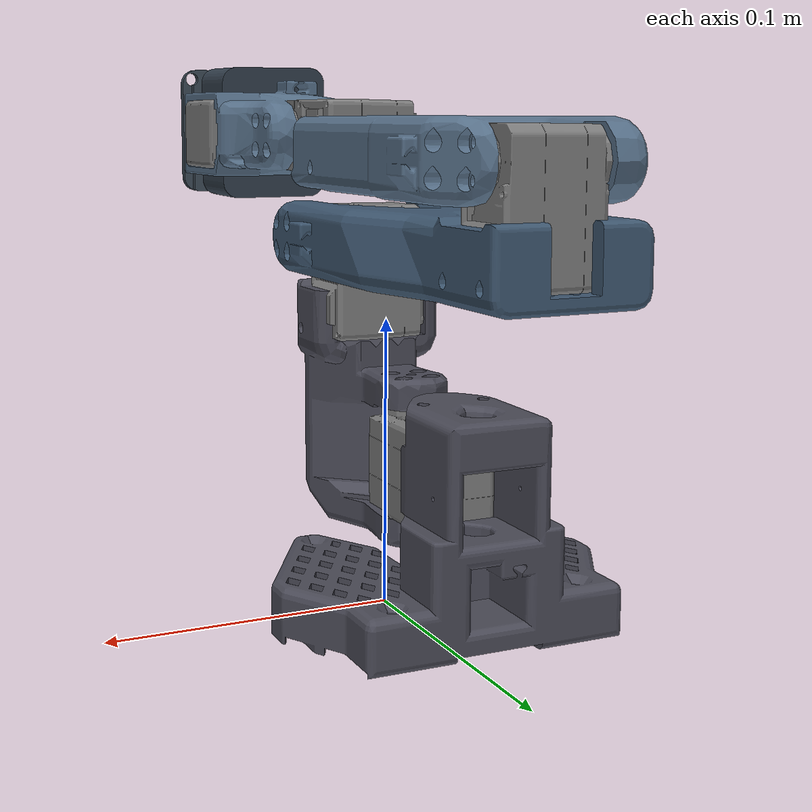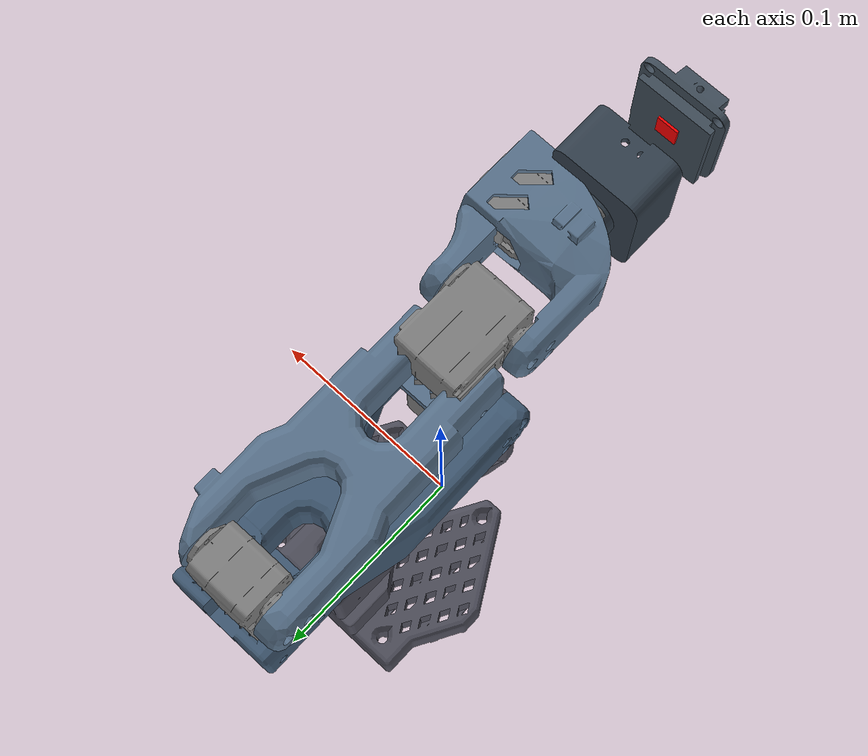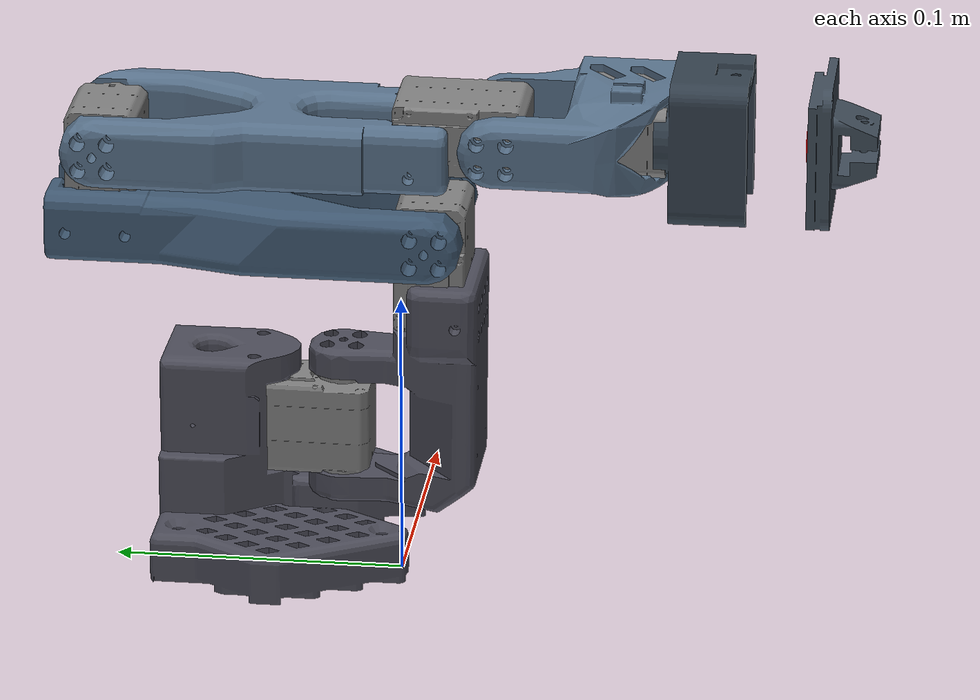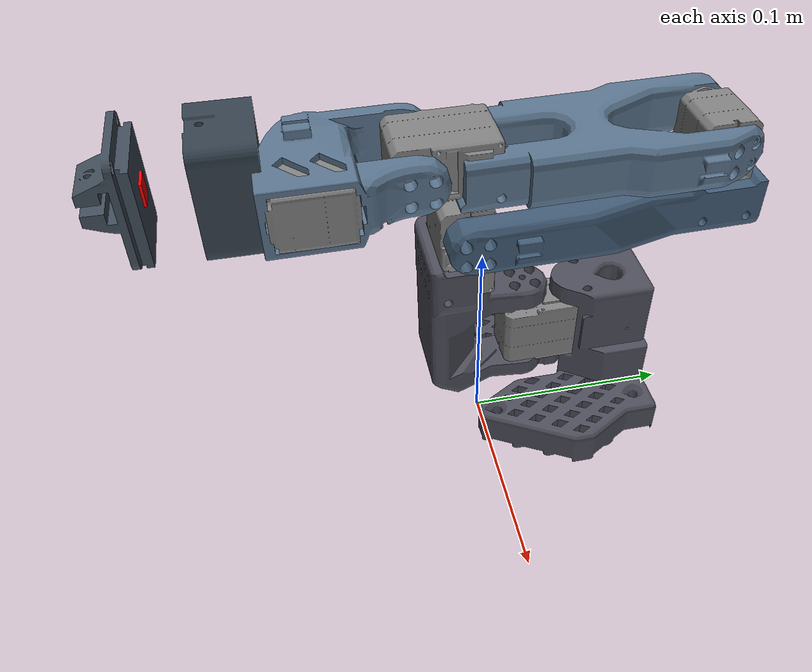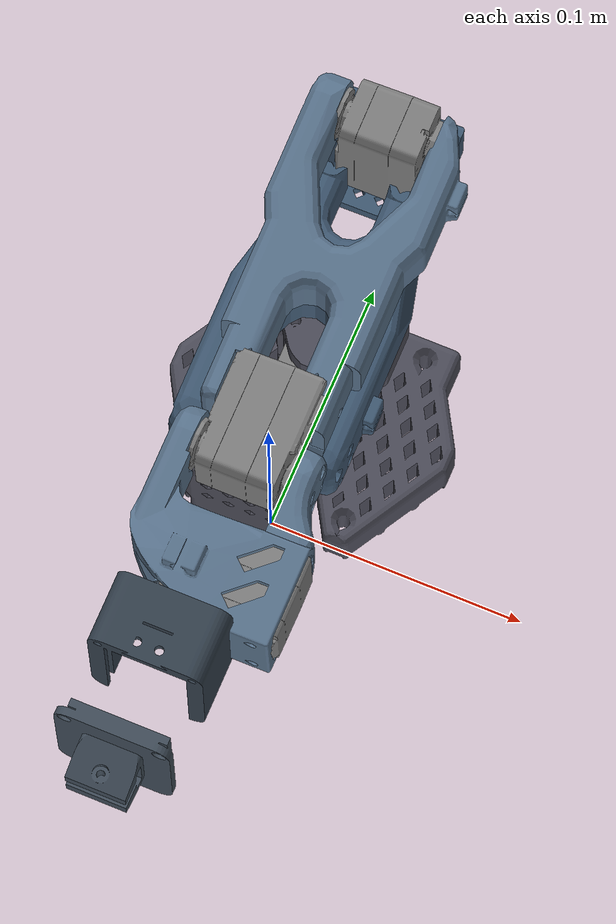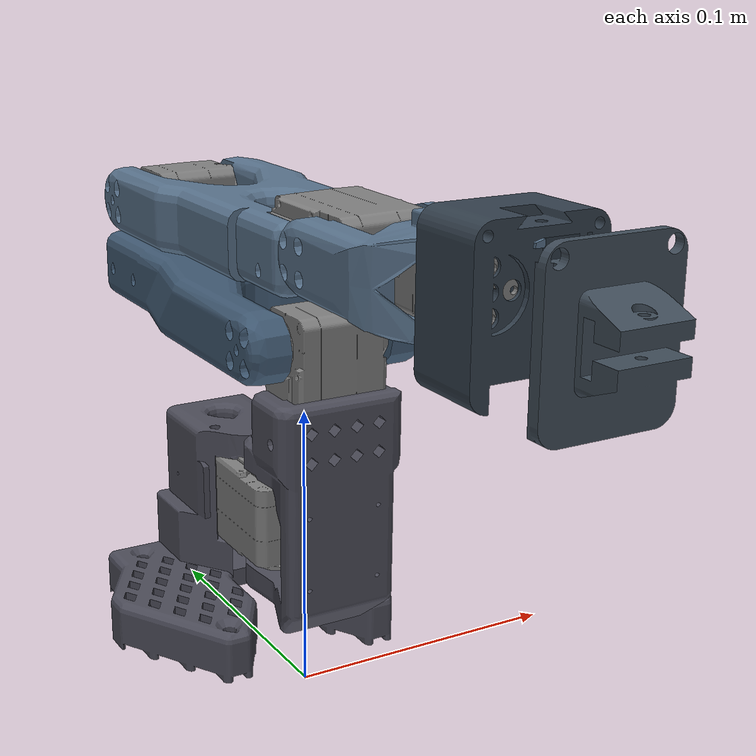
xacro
<?xml version="1.0"?>
<!-- Gazebo Classic 专用包装层；机械臂的几何与运动学定义保持在 so101_arm_macro.urdf.xacro。 -->
<robot name="so101_arm" xmlns:xacro="http://www.ros.org/wiki/xacro">
  <xacro:arg name="prefix" default=""/>

  <xacro:include filename="$(find haiying_v9_2)/urdf/so101_arm_macro_v9_2.urdf.xacro"/>
  <xacro:so101_arm prefix="$(arg prefix)"/>

  <ros2_control name="GazeboSystem" type="system">
    <hardware>
      <plugin>gazebo_ros2_control/GazeboSystem</plugin>
    </hardware>
    <joint name="$(arg prefix)J1_Rotation"><command_interface name="position"/><state_interface name="position"/><state_interface name="velocity"/><state_interface name="effort"/></joint>
    <joint name="$(arg prefix)J2_Shoulder_Pitch"><command_interface name="position"/><state_interface name="position"/><state_interface name="velocity"/><state_interface name="effort"/></joint>
    <joint name="$(arg prefix)J3_Elbow_Pitch"><command_interface name="position"/><state_interface name="position"/><state_interface name="velocity"/><state_interface name="effort"/></joint>
    <joint name="$(arg prefix)J4_Wrist_Pitch"><command_interface name="position"/><state_interface name="position"/><state_interface name="velocity"/><state_interface name="effort"/></joint>
    <joint name="$(arg prefix)J5_Wrist_Roll"><command_interface name="position"/><state_interface name="position"/><state_interface name="velocity"/><state_interface name="effort"/></joint>
  </ros2_control>

  <!-- 基座不受重力影响；各活动连杆仍在重力下由 position 控制器保持。 -->
  <gazebo reference="$(arg prefix)base_footprint"><gravity>false</gravity></gazebo>
  <gazebo reference="$(arg prefix)J1_Rotation"><provideFeedback>true</provideFeedback></gazebo>
  <gazebo reference="$(arg prefix)J2_Shoulder_Pitch"><provideFeedback>true</provideFeedback></gazebo>
  <gazebo reference="$(arg prefix)J3_Elbow_Pitch"><provideFeedback>true</provideFeedback></gazebo>
  <gazebo reference="$(arg prefix)J4_Wrist_Pitch"><provideFeedback>true</provideFeedback></gazebo>
  <gazebo reference="$(arg prefix)J5_Wrist_Roll"><provideFeedback>true</provideFeedback></gazebo>

  <gazebo>
    <!-- 使用 package 路径，避免用户环境遗漏 GAZEBO_PLUGIN_PATH 时插件静默未加载。 -->
    <plugin name="gazebo_ros2_control" filename="libgazebo_ros2_control.so">
      <robot_param>robot_description</robot_param>
      <robot_param_node>robot_state_publisher</robot_param_node>
      <hold_joints>true</hold_joints>
      <parameters>$(find so-101_description)/config/ros2_controllers.yaml</parameters>
    </plugin>
  </gazebo>
</robot>

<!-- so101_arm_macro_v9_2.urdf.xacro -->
<robot xmlns:xacro="http://www.ros.org/wiki/xacro">

  <xacro:macro name="so101_arm" params="prefix:=''">
    <xacro:property name="body" value="package://so-101_description/urdf/so101_urdf/meshes"/>
    <xacro:property name="grip" value="package://so-101_description/urdf/end_effector_urdf/meshes"/>

    <!-- ===== base_footprint: 世界根节点 ===== -->
    <link name="${prefix}base_footprint"/>

    <!-- rpy="-1.5708 0 0" 使臂体从 CAD 水平转为竖直站立
         base_link Y → world -Z, base_link Z → world Y
         J1 轴用 base_link Y → world Z (yaw) -->
    <joint name="${prefix}base_orientation_joint" type="fixed">
      <origin xyz="0 0.038055 0.045" rpy="-1.5707963 0 0"/>
      <parent link="${prefix}base_footprint"/>
      <child link="${prefix}base_link"/>
    </joint>

    <!-- base_link (CAD: base_link) — 底座              -->
    <link name="${prefix}base_link">
      <inertial>
        <origin xyz="-0.0000096 0.014495 0.012489" rpy="0 0 0"/>
        <mass value="0.14723"/>
        <inertia ixx="0.00013418" iyy="0.00017400" izz="0.00016382"
                 ixy="-0.00000001" ixz="0.00000004" iyz="0.00002337"/>
      </inertial>
      <visual>
        <origin xyz="0 0.036394 -0.010422" rpy="1.5707963 0 0"/>
        <geometry>
          <mesh filename="${body}/part_001_Wiring_holder_v1.stl" scale="0.001 0.001 0.001"/>
        </geometry>
        <material name="so101_dark"><color rgba="0.3 0.3 0.35 1.0"/></material>
      </visual>
      <collision>
        <origin xyz="0 0.036394 -0.010422" rpy="1.5707963 0 0"/>
        <geometry>
          <mesh filename="${body}/part_001_Wiring_holder_v1.stl" scale="0.001 0.001 0.001"/>
        </geometry>
      </collision>
    </link>

    <!-- shoulder (CAD: Rotation_Pitch) — 肩部          -->
    <!-- 嵌入舵机 mesh: part_086(舵机1) + part_085(舵机0)  -->
    <!-- 原始CAD: driver_1 和 driver_0 均在 [0,0,0] 叠加   -->
    <link name="${prefix}shoulder">
      <inertial>
        <origin xyz="-0.000258 -0.058004 -0.038910" rpy="0 0 0"/>
        <mass value="0.082067"/>
        <inertia ixx="0.00005789" iyy="0.00002429" izz="0.00005184"
                 ixy="-0.00000041" ixz="-0.00000001" iyz="-0.00000557"/>
      </inertial>
      <!-- 肩部主体 -->
      <visual>
        <origin xyz="0 0 0" rpy="1.5707963 0 0"/>
        <geometry><mesh filename="${body}/part_002_Wiring_holder_v1_1.stl" scale="0.001 0.001 0.001"/></geometry>
        <material name="so101_dark"><color rgba="0.3 0.3 0.35 1.0"/></material>
      </visual>
      <!-- 舵机1 (part_086): driver_1_joint origin [0,0,0] from shoulder -->
      <visual>
        <origin xyz="0 0 0" rpy="1.5707963 0 0"/>
        <geometry><mesh filename="${body}/part_086_1653192640.stl" scale="0.001 0.001 0.001"/></geometry>
        <material name="servo_grey"><color rgba="0.5 0.5 0.5 1.0"/></material>
      </visual>
      <!-- 舵机0 (part_085): driver_0_joint origin [0,0,0] from driver_1 = 同位置叠加 -->
      <visual>
        <origin xyz="0 0 0" rpy="1.5707963 0 0"/>
        <geometry><mesh filename="${body}/part_085_Extruded_1.stl" scale="0.001 0.001 0.001"/></geometry>
        <material name="servo_grey"><color rgba="0.5 0.5 0.5 1.0"/></material>
      </visual>
      <collision>
        <origin xyz="0 0 0" rpy="1.5707963 0 0"/>
        <geometry><mesh filename="${body}/part_002_Wiring_holder_v1_1.stl" scale="0.001 0.001 0.001"/></geometry>
      </collision>
    </link>

    <!-- J1: 底座 → 肩部 (yaw). 轴=Y 使经 base_footprint 旋转后绕世界 Z -->
    <joint name="${prefix}J1_Rotation" type="revolute">
      <origin xyz="0 0.036394 -0.010422" rpy="0 0 0"/>
      <parent link="${prefix}base_link"/>
      <child link="${prefix}shoulder"/>
      <axis xyz="0 1 0"/>
      <limit lower="-1.57" upper="1.57" effort="10" velocity="5"/>
      <dynamics damping="0.1"/>
    </joint>

    <!-- arm_upper (CAD: under_arm) — 大臂              -->
    <!-- 嵌入舵机 mesh: part_087(舵机2)                   -->
    <!-- CAD: driver_2_joint origin [0.0237,0.1198,0.0389] -->
    <link name="${prefix}arm_upper">
      <inertial>
        <origin xyz="0.025164 -0.000131 0.060915" rpy="0 0 0"/>
        <mass value="0.14017"/>
        <inertia ixx="0.00017080" iyy="0.00021880" izz="0.00006087"
                 ixy="-0.00000006" ixz="0.00000255" iyz="-0.00000104"/>
      </inertial>
      <!-- 大臂主体 -->
      <visual>
        <origin xyz="0.023656 0.119757 0.038947" rpy="1.5707963 0 0"/>
        <geometry><mesh filename="${body}/part_003_Wiring_holder_v1_1.stl" scale="0.001 0.001 0.001"/></geometry>
        <material name="so101_mid"><color rgba="0.25 0.35 0.45 1.0"/></material>
      </visual>
      <!-- 舵机2 (part_087): 在 driver_2_joint 处 [0.0237,0.1198,0.0389] -->
      <visual>
        <origin xyz="0.023656 0.119757 0.038947" rpy="1.5707963 0 0"/>
        <geometry><mesh filename="${body}/part_087_736125216.stl" scale="0.001 0.001 0.001"/></geometry>
        <material name="servo_grey"><color rgba="0.5 0.5 0.5 1.0"/></material>
      </visual>
      <collision>
        <origin xyz="0.023656 0.119757 0.038947" rpy="1.5707963 0 0"/>
        <geometry><mesh filename="${body}/part_003_Wiring_holder_v1_1.stl" scale="0.001 0.001 0.001"/></geometry>
      </collision>
    </link>

    <!-- J2: 肩部 → 大臂 (shoulder pitch) -->
    <joint name="${prefix}J2_Shoulder_Pitch" type="revolute">
      <origin xyz="-0.023656 -0.119757 -0.038947" rpy="0 0 0"/>
      <parent link="${prefix}shoulder"/>
      <child link="${prefix}arm_upper"/>
      <axis xyz="0.99996 -0.000076 0.008726"/>
      <limit lower="-0.5236" upper="2.9" effort="10" velocity="5"/>
      <dynamics damping="0.1"/>
    </joint>

    <!-- arm_lower (CAD: upper_arm) — 小臂              -->
    <!-- 嵌入舵机 mesh: part_088(舵机3)                   -->
    <!-- CAD: driver_3_joint origin [0.0139,0.1485,-0.0736] -->
    <link name="${prefix}arm_lower">
      <inertial>
        <origin xyz="0.017605 0.000673 -0.056114" rpy="0 0 0"/>
        <mass value="0.11085"/>
        <inertia ixx="0.00010673" iyy="0.00014075" izz="0.00004415"
                 ixy="0.00000023" ixz="0.00000165" iyz="0.00000278"/>
      </inertial>
      <!-- 小臂主体 -->
      <visual>
        <origin xyz="0.013895 0.148458 -0.073566" rpy="1.5707963 0 0"/>
        <geometry><mesh filename="${body}/part_004_Wiring_holder_v1_2.stl" scale="0.001 0.001 0.001"/></geometry>
        <material name="so101_light"><color rgba="0.35 0.45 0.55 1.0"/></material>
      </visual>
      <!-- 舵机3 (part_088): 驱动 J4, 在 driver_3_joint 处 -->
      <visual>
        <origin xyz="0.013895 0.148458 -0.073566" rpy="1.5707963 0 0"/>
        <geometry><mesh filename="${body}/part_088_1653192640_1.stl" scale="0.001 0.001 0.001"/></geometry>
        <material name="servo_grey"><color rgba="0.5 0.5 0.5 1.0"/></material>
      </visual>
      <collision>
        <origin xyz="0.013895 0.148458 -0.073566" rpy="1.5707963 0 0"/>
        <geometry><mesh filename="${body}/part_004_Wiring_holder_v1_2.stl" scale="0.001 0.001 0.001"/></geometry>
      </collision>
    </link>

    <!-- J3: 大臂 → 小臂 (elbow pitch) -->
    <joint name="${prefix}J3_Elbow_Pitch" type="revolute">
      <origin xyz="0.009761 -0.028701 0.112513" rpy="0 0 0"/>
      <parent link="${prefix}arm_upper"/>
      <child link="${prefix}arm_lower"/>
      <axis xyz="-0.99992 0.008802 -0.008650"/>
      <limit lower="0" upper="3.14" effort="10" velocity="5"/>
      <dynamics damping="0.1"/>
    </joint>

    <!-- wrist (CAD: Wrist_Roll_Pitch) — 腕部           -->
    <!-- J4 控制, 内含舵机4 (part_089) 在腕部空缺处        -->
    <!-- 参照 SO-100-arm Wrist_Pitch_Roll               -->
    <link name="${prefix}wrist">
      <inertial>
        <origin xyz="0.001941 -0.000195 -0.027095" rpy="0 0 0"/>
        <mass value="0.037719"/>
        <inertia ixx="0.00001646" iyy="0.00002939" izz="0.00001966"
                 ixy="0.00000022" ixz="0.00000233" iyz="-0.00000011"/>
      </inertial>
      <!-- 腕部主体 -->
      <visual>
        <origin xyz="-0.005534 0.152613 0.060418" rpy="1.5707963 0 0"/>
        <geometry><mesh filename="${body}/part_008_Wiring_holder_v1_1__2.stl" scale="0.001 0.001 0.001"/></geometry>
        <material name="so101_light"><color rgba="0.35 0.45 0.55 1.0"/></material>
      </visual>
      <!-- 舵机4 (part_089): J5 驱动舵机, 放在腕部空缺处, 类似 SO-100-arm 的 wrist 舵机 -->
      <visual>
        <origin xyz="-0.005534 0.152613 0.060418" rpy="1.5707963 0 0"/>
        <geometry><mesh filename="${body}/part_089_1653192640_2.stl" scale="0.001 0.001 0.001"/></geometry>
        <material name="servo_grey"><color rgba="0.5 0.5 0.5 1.0"/></material>
      </visual>
      <collision>
        <origin xyz="-0.005534 0.152613 0.060418" rpy="1.5707963 0 0"/>
        <geometry><mesh filename="${body}/part_008_Wiring_holder_v1_1__2.stl" scale="0.001 0.001 0.001"/></geometry>
      </collision>
    </link>

    <!-- J4: 小臂 → 腕部 (wrist pitch) -->
    <joint name="${prefix}J4_Wrist_Pitch" type="revolute">
      <origin xyz="0.019429 -0.004155 -0.133983" rpy="0 0 0"/>
      <parent link="${prefix}arm_lower"/>
      <child link="${prefix}wrist"/>
      <axis xyz="0.99854 -0.044303 0.030973"/>
      <limit lower="-1.57" upper="1.57" effort="10" velocity="5"/>
      <dynamics damping="0.1"/>
    </joint>

    <!-- J5: 腕部 → 末端执行器 (wrist roll, Y轴回转)      -->
    <!-- 参照 SO-100-arm Wrist_Roll:                    -->
    <!--   origin: xyz="0 -0.0601 0" rpy="0 1.57079 0" -->
    <!--   axis: xyz="0 1 0"                           -->
    <!-- 第5个舵机驱动末端执行器绕Y轴旋转                     -->

    <!-- gripper_base — 末端执行器夹爪                    -->
    <!-- 原始CAD rpy="1.5708 0 0"→先绕X-90°(rpy=0),     -->
    <!-- 再绕Z逆时针90° (rpy="0 0 1.5708")               -->
    <link name="${prefix}gripper_base">
      <inertial>
        <origin xyz="-0.000942 -0.005227 -0.000001" rpy="0 0 0"/>
        <mass value="0.053358"/>
        <inertia ixx="0.00003626" iyy="0.00001901" izz="0.00003788"
                 ixy="-0.00000155" ixz="-0.00000000" iyz="-0.00000000"/>
      </inertial>
      <!-- 夹爪主体: 绕Z逆时针90° + 原始CAD rpy补偿 -->
      <visual>
        <origin xyz="0 0 0" rpy="0 0 1.5707963"/>
        <geometry><mesh filename="${grip}/part_002_solid_002.stl" scale="0.001 0.001 0.001"/></geometry>
        <material name="gripper_dark"><color rgba="0.2 0.25 0.3 1.0"/></material>
      </visual>
      <visual>
        <origin xyz="0 0 0" rpy="0 0 1.5707963"/>
        <geometry><mesh filename="${grip}/part_001_solid_001.stl" scale="0.001 0.001 0.001"/></geometry>
        <material name="gripper_light"><color rgba="0.25 0.3 0.35 1.0"/></material>
      </visual>
      <collision>
        <origin xyz="0 0 0" rpy="0 0 1.5707963"/>
        <geometry><mesh filename="${grip}/part_002_solid_002.stl" scale="0.001 0.001 0.001"/></geometry>
      </collision>
    </link>

    <!-- J5: wrist → gripper_base, 绕Y轴回转, 参照 SO-100-arm Wrist_Roll
         末端执行器平移到第5个舵机(part_089)右侧 (wrist X+) -->
    <joint name="${prefix}J5_Wrist_Roll" type="revolute">
      <origin xyz="0 0 -0.059" rpy="0 0 0"/>
      <parent link="${prefix}wrist"/>
      <child link="${prefix}gripper_base"/>
      <axis xyz="0 0 1"/>
      <limit lower="-3.14" upper="3.14" effort="10" velocity="5"/>
      <dynamics damping="0.1"/>
    </joint>

    <!-- end_effector — 工具点 (TCP)                    -->
    <link name="${prefix}end_effector">
      <visual>
        <origin xyz="0 0 0" rpy="0 0 0"/>
        <geometry><box size="0.01 0.01 0.01"/></geometry>
        <material name="red"><color rgba="1.0 0.0 0.0 1.0"/></material>
      </visual>
    </link>

    <!-- TCP 沿夹爪开口方向 -->
    <joint name="${prefix}end_effector_joint" type="fixed">
      <parent link="${prefix}gripper_base"/>
      <child link="${prefix}end_effector"/>
      <origin xyz="0 0 -0.05" rpy="0 0 0"/>
    </joint>

  </xacro:macro>
</robot>
